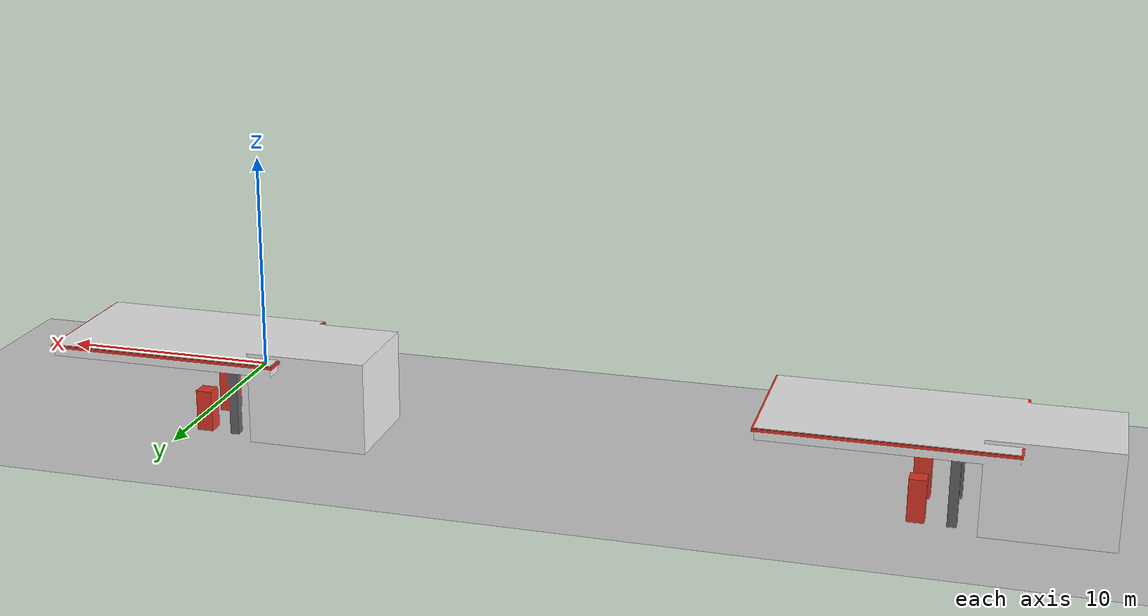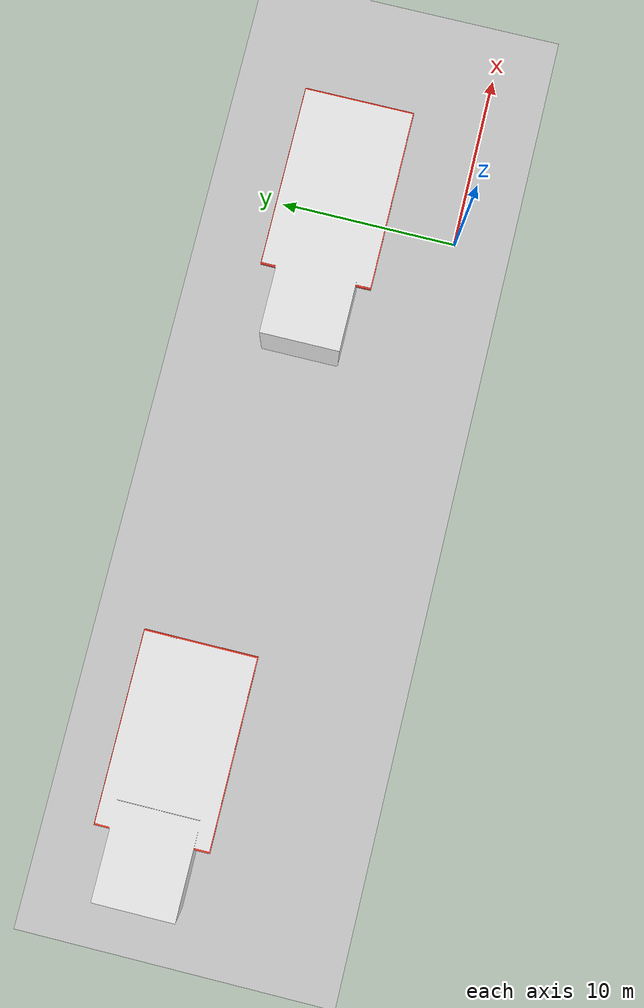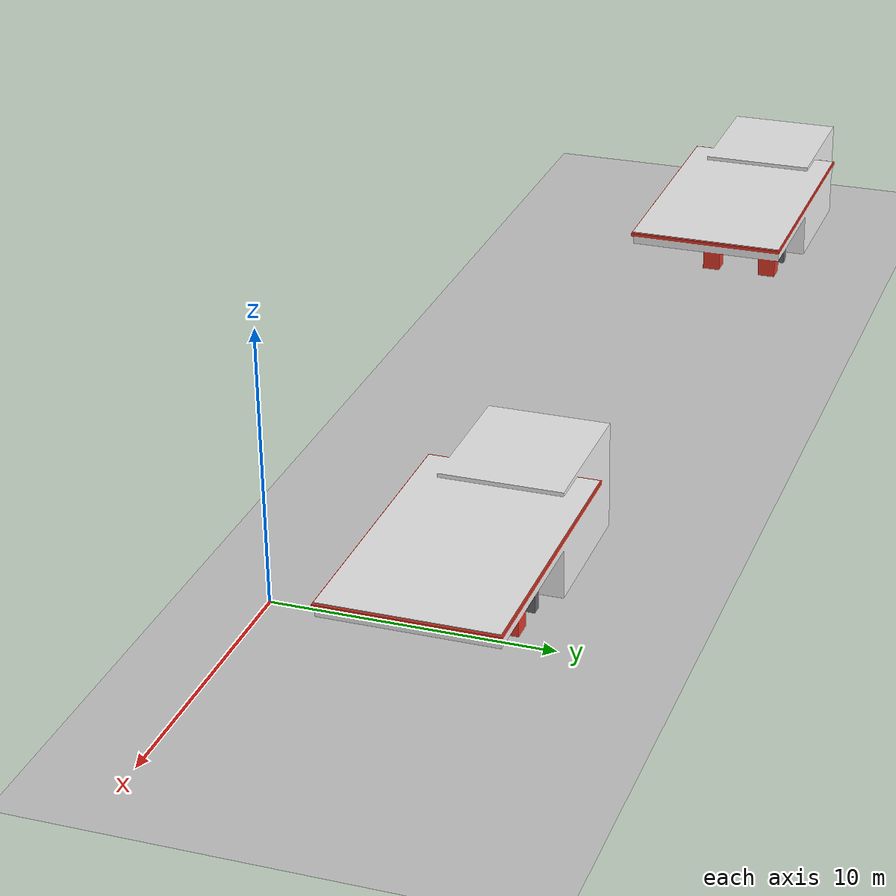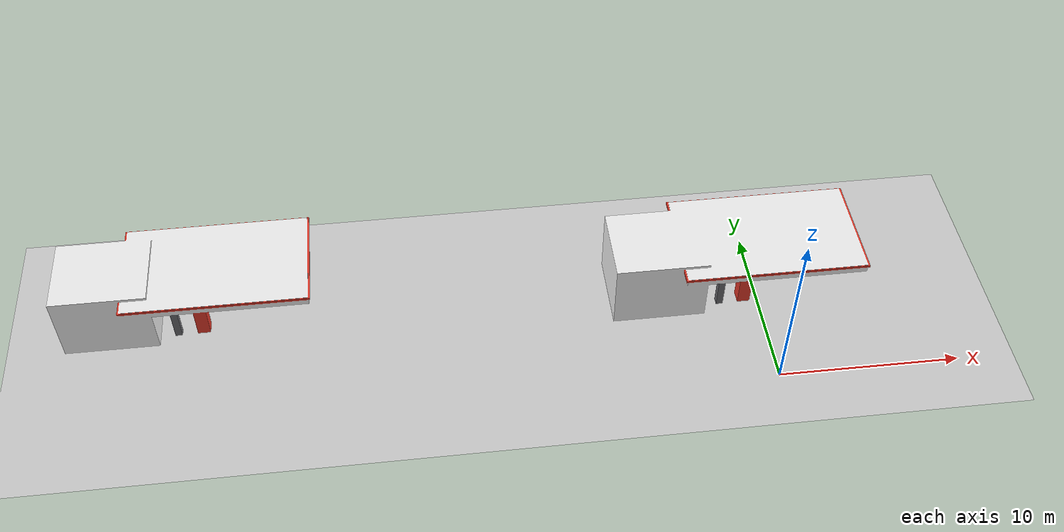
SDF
<sdf version="1.6">
 <world name="default">
  <model name="ground_plane">
   <static>1</static>
   <link name="link">
    <collision name="collision">
     <geometry><plane><normal>0 0 1</normal><size>100 100</size></plane></geometry>
     <surface>
      <contact><collide_bitmask>65535</collide_bitmask></contact>
      <friction><ode><mu>100</mu><mu2>50</mu2></ode></friction>
     </surface>
    </collision>
    <visual name="visual">
     <cast_shadows>0</cast_shadows>
     <geometry><plane><normal>0 0 1</normal><size>100 100</size></plane></geometry>
     <material>
      <script><uri>file://media/materials/scripts/gazebo.material</uri><name>Gazebo/Grey</name></script>
     </material>
    </visual>
   </link>
  </model>
  <light name="sun" type="directional">
   <pose>0 0 10 0 -0 0</pose>
   <diffuse>0.8 0.8 0.8 1</diffuse>
   <specular>0.2 0.2 0.2 1</specular>
   <attenuation>
    <range>1000</range>
    <constant>0.9</constant>
    <linear>0.01</linear>
    <quadratic>0.001</quadratic>
   </attenuation>
   <direction>-0.5 0.1 -0.9</direction>
  </light>
  <model name="gas_station">
   <static>1</static>
   <link name="link">
    <collision name="collision">
     <geometry><mesh><uri>model://gas_station/meshes/gas_station.dae</uri></mesh></geometry>
    </collision>
    <visual name="visual">
     <geometry><mesh><uri>model://gas_station/meshes/gas_station.dae</uri></mesh></geometry>
     <material>
      <script>
       <uri>model://gas_station/materials/scripts</uri>
       <uri>model://gas_station/materials/textures</uri>
       <name>GasStation/Diffuse</name>
      </script>
      <shader type="normal_map_tangent_space"><normal_map>GasStation_Normal.png</normal_map></shader>
     </material>
    </visual>
   </link>
   <pose>-2 7 0 0 -0 0</pose>
  </model>
  <gravity>0 0 -9.8</gravity>
  <magnetic_field>6e-06 2.3e-05 -4.2e-05</magnetic_field>
  <atmosphere type="adiabatic"/>
  <physics name="default_physics" default="0" type="ode">
   <max_step_size>0.001</max_step_size>
   <real_time_factor>1</real_time_factor>
   <real_time_update_rate>1000</real_time_update_rate>
  </physics>
  <scene><ambient>0.4 0.4 0.4 1</ambient><background>0.7 0.7 0.7 1</background><shadows>1</shadows></scene>
  <spherical_coordinates>
   <surface_model>EARTH_WGS84</surface_model>
   <latitude_deg>0</latitude_deg>
   <longitude_deg>0</longitude_deg>
   <elevation>0</elevation>
   <heading_deg>0</heading_deg>
  </spherical_coordinates>
  <model name="gas_station_clone">
   <static>1</static>
   <link name="link">
    <collision name="collision">
     <geometry><mesh><uri>model://gas_station/meshes/gas_station.dae</uri></mesh></geometry>
    </collision>
    <visual name="visual">
     <geometry><mesh><uri>model://gas_station/meshes/gas_station.dae</uri></mesh></geometry>
     <material>
      <script>
       <uri>model://gas_station/materials/scripts</uri>
       <uri>model://gas_station/materials/textures</uri>
       <name>GasStation/Diffuse</name>
      </script>
      <shader type="normal_map_tangent_space"><normal_map>GasStation_Normal.png</normal_map></shader>
     </material>
    </visual>
   </link>
   <pose>-32.5055 8.13925 0 0 -0 0</pose>
  </model>
 </world>
</sdf>
